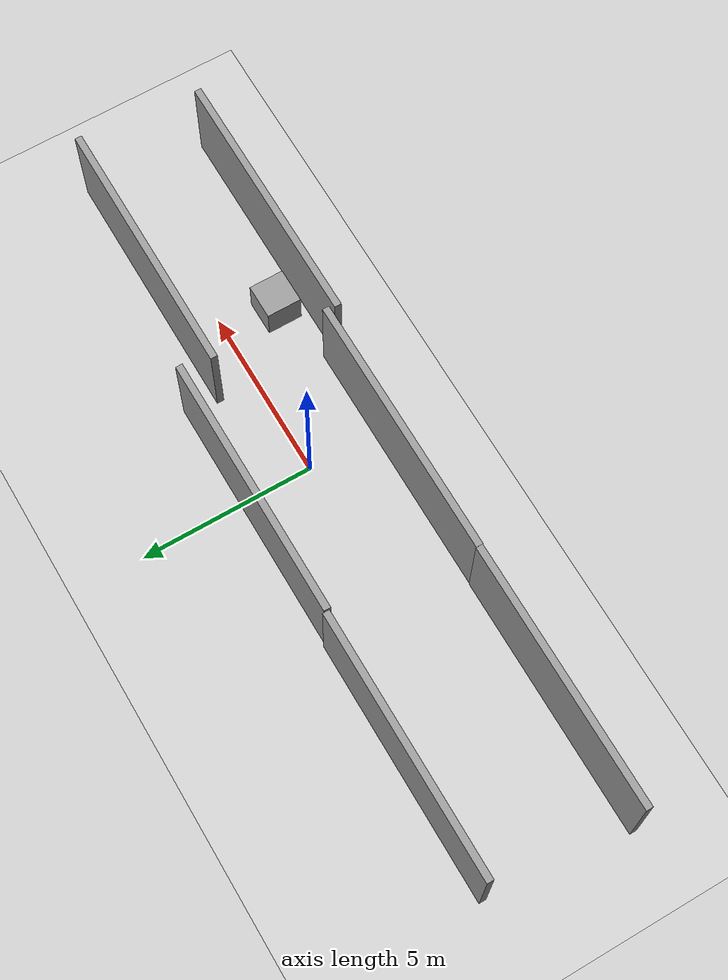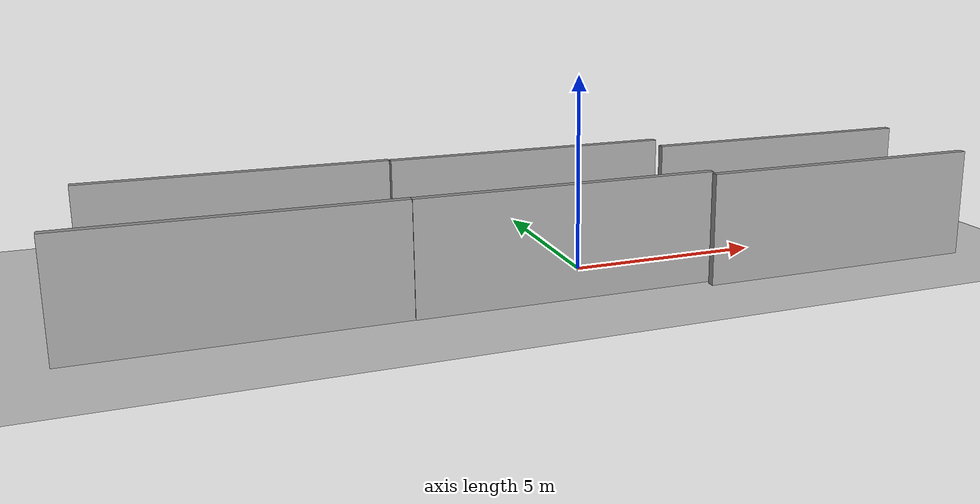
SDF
<sdf version="1.7">
 <world name="default">
  <light name="sun" type="directional">
   <pose>0 0 10 0 -0 0</pose>
   <diffuse>0.8 0.8 0.8 1</diffuse>
   <specular>0.2 0.2 0.2 1</specular>
   <attenuation>
    <range>1000</range>
    <constant>0.9</constant>
    <linear>0.01</linear>
    <quadratic>0.001</quadratic>
   </attenuation>
   <direction>-0.5 0.1 -0.9</direction>
   <spot><inner_angle>0</inner_angle><outer_angle>0</outer_angle><falloff>0</falloff></spot>
  </light>
  <model name="ground_plane">
   <static>1</static>
   <link name="link">
    <collision name="collision">
     <geometry><plane><normal>0 0 1</normal><size>100 100</size></plane></geometry>
     <surface>
      <contact><collide_bitmask>65535</collide_bitmask></contact>
      <friction><ode><mu>100</mu><mu2>50</mu2></ode></friction>
     </surface>
    </collision>
    <visual name="visual">
     <cast_shadows>0</cast_shadows>
     <geometry><plane><normal>0 0 1</normal><size>100 100</size></plane></geometry>
     <material>
      <script><uri>file://media/materials/scripts/gazebo.material</uri><name>Gazebo/Grey</name></script>
     </material>
    </visual>
   </link>
  </model>
  <gravity>0 0 -9.8</gravity>
  <magnetic_field>6e-06 2.3e-05 -4.2e-05</magnetic_field>
  <atmosphere type="adiabatic"/>
  <physics type="ode">
   <max_step_size>0.001</max_step_size>
   <real_time_factor>1</real_time_factor>
   <real_time_update_rate>1000</real_time_update_rate>
  </physics>
  <scene><ambient>0.4 0.4 0.4 1</ambient><background>0.7 0.7 0.7 1</background><shadows>1</shadows></scene>
  <spherical_coordinates>
   <surface_model>EARTH_WGS84</surface_model>
   <latitude_deg>0</latitude_deg>
   <longitude_deg>0</longitude_deg>
   <elevation>0</elevation>
   <heading_deg>0</heading_deg>
  </spherical_coordinates>
  <model name="grey_wall">
   <static>1</static>
   <link name="link">
    <pose>0 0 1.4 0 -0 0</pose>
    <collision name="collision"><geometry><box><size>7.5 0.2 2.8</size></box></geometry></collision>
    <visual name="visual">
     <cast_shadows>0</cast_shadows>
     <geometry><box><size>7.5 0.2 2.8</size></box></geometry>
     <material>
      <script>
       <uri>model://grey_wall/materials/scripts</uri>
       <uri>model://grey_wall/materials/textures</uri>
       <name>vrc/grey_wall</name>
      </script>
     </material>
    </visual>
   </link>
   <pose>-1.09259 -2.04122 0 0 -0 0</pose>
  </model>
  <model name="grey_wall_clone">
   <static>1</static>
   <link name="link">
    <pose>0 0 1.4 0 -0 0</pose>
    <collision name="collision"><geometry><box><size>7.5 0.2 2.8</size></box></geometry></collision>
    <visual name="visual">
     <cast_shadows>0</cast_shadows>
     <geometry><box><size>7.5 0.2 2.8</size></box></geometry>
     <material>
      <script>
       <uri>model://grey_wall/materials/scripts</uri>
       <uri>model://grey_wall/materials/textures</uri>
       <name>vrc/grey_wall</name>
      </script>
     </material>
    </visual>
   </link>
   <pose>-0.620013 1.99426 0 0 -0 0</pose>
  </model>
  <model name="grey_wall_clone_0">
   <static>1</static>
   <link name="link">
    <pose>0 0 1.4 0 -0 0</pose>
    <collision name="collision"><geometry><box><size>7.5 0.2 2.8</size></box></geometry></collision>
    <visual name="visual">
     <cast_shadows>0</cast_shadows>
     <geometry><box><size>7.5 0.2 2.8</size></box></geometry>
     <material>
      <script>
       <uri>model://grey_wall/materials/scripts</uri>
       <uri>model://grey_wall/materials/textures</uri>
       <name>vrc/grey_wall</name>
      </script>
     </material>
    </visual>
   </link>
   <pose>6.30795 -2.34979 0 0 -0 0</pose>
  </model>
  <model name="grey_wall_clone_1">
   <static>1</static>
   <link name="link">
    <pose>0 0 1.4 0 -0 0</pose>
    <collision name="collision"><geometry><box><size>7.5 0.2 2.8</size></box></geometry></collision>
    <visual name="visual">
     <cast_shadows>0</cast_shadows>
     <geometry><box><size>7.5 0.2 2.8</size></box></geometry>
     <material>
      <script>
       <uri>model://grey_wall/materials/scripts</uri>
       <uri>model://grey_wall/materials/textures</uri>
       <name>vrc/grey_wall</name>
      </script>
     </material>
    </visual>
   </link>
   <pose>6.62755 1.11104 0 0 -0 0</pose>
  </model>
  <model name="grey_wall_clone_2">
   <static>1</static>
   <link name="link">
    <pose>0 0 1.4 0 -0 0</pose>
    <collision name="collision"><geometry><box><size>7.5 0.2 2.8</size></box></geometry></collision>
    <visual name="visual">
     <cast_shadows>0</cast_shadows>
     <geometry><box><size>7.5 0.2 2.8</size></box></geometry>
     <material>
      <script>
       <uri>model://grey_wall/materials/scripts</uri>
       <uri>model://grey_wall/materials/textures</uri>
       <name>vrc/grey_wall</name>
      </script>
     </material>
    </visual>
   </link>
   <pose>-8.59463 -2.02499 0 0 -0 0</pose>
  </model>
  <model name="grey_wall_clone_3">
   <static>1</static>
   <link name="link">
    <pose>0 0 1.4 0 -0 0</pose>
    <collision name="collision"><geometry><box><size>7.5 0.2 2.8</size></box></geometry></collision>
    <visual name="visual">
     <cast_shadows>0</cast_shadows>
     <geometry><box><size>7.5 0.2 2.8</size></box></geometry>
     <material>
      <script>
       <uri>model://grey_wall/materials/scripts</uri>
       <uri>model://grey_wall/materials/textures</uri>
       <name>vrc/grey_wall</name>
      </script>
     </material>
    </visual>
   </link>
   <pose>-8.15216 2.05373 0 0 -0 0</pose>
  </model>
  <model name="unit_box">
   <pose>4.49843 -1.52367 0.5 0 -0 0</pose>
   <link name="link">
    <inertial>
     <mass>1</mass>
     <inertia>
      <ixx>0.166667</ixx>
      <ixy>0</ixy>
      <ixz>0</ixz>
      <iyy>0.166667</iyy>
      <iyz>0</iyz>
      <izz>0.166667</izz>
     </inertia>
    </inertial>
    <collision name="collision"><geometry><box><size>1 1 1</size></box></geometry></collision>
    <visual name="visual">
     <geometry><box><size>1 1 1</size></box></geometry>
     <material>
      <script><name>Gazebo/Grey</name><uri>file://media/materials/scripts/gazebo.material</uri></script>
     </material>
    </visual>
   </link>
  </model>
 </world>
</sdf>
